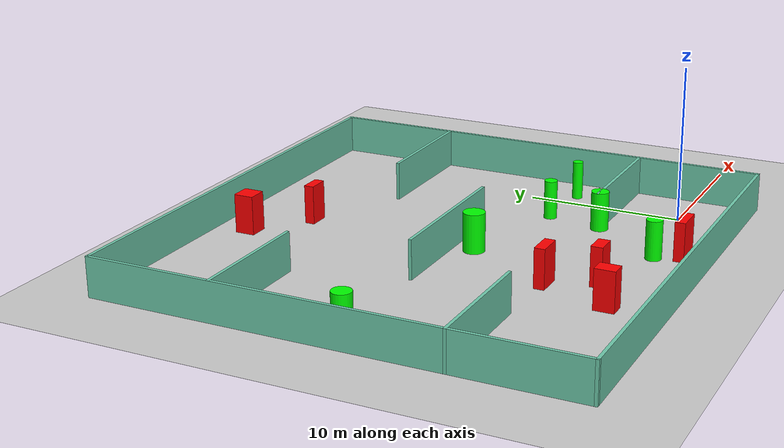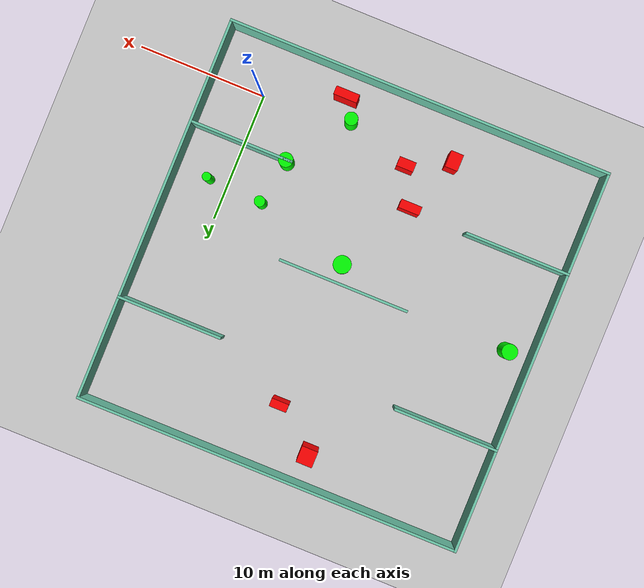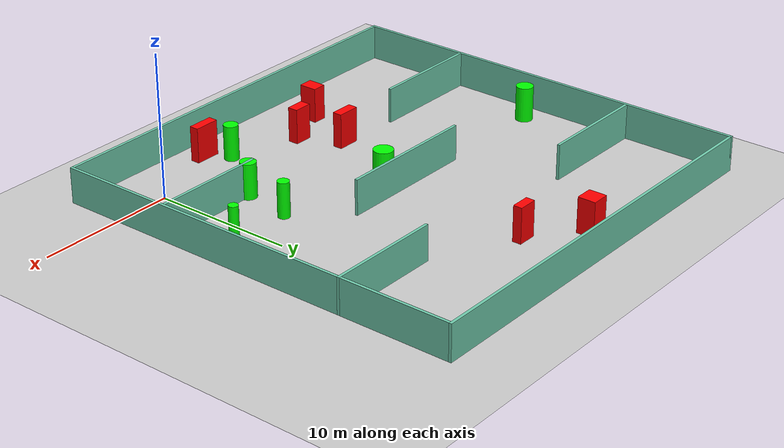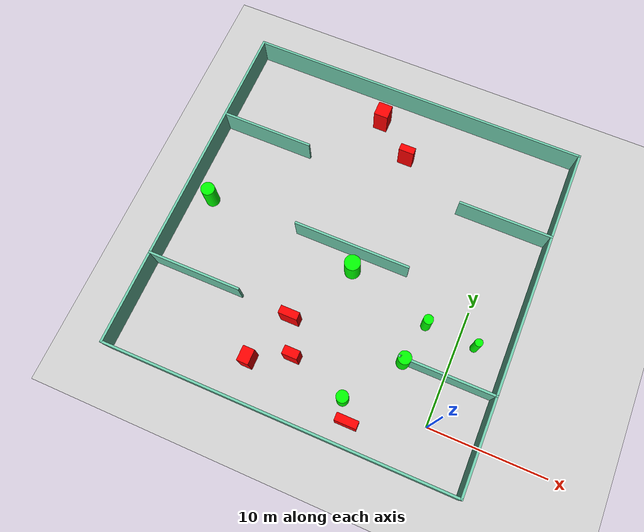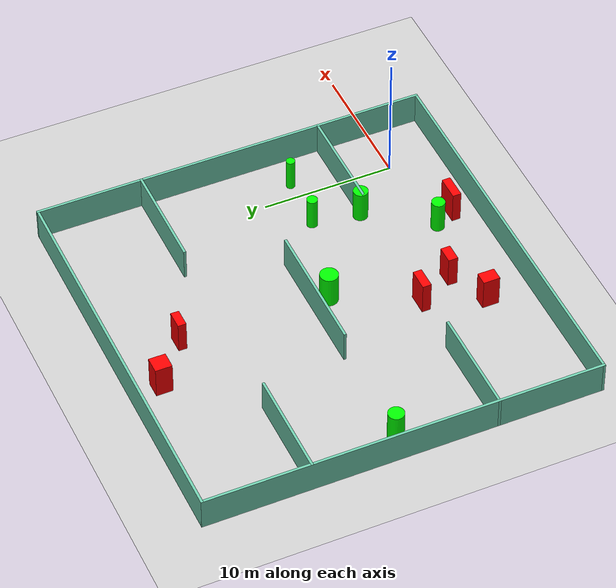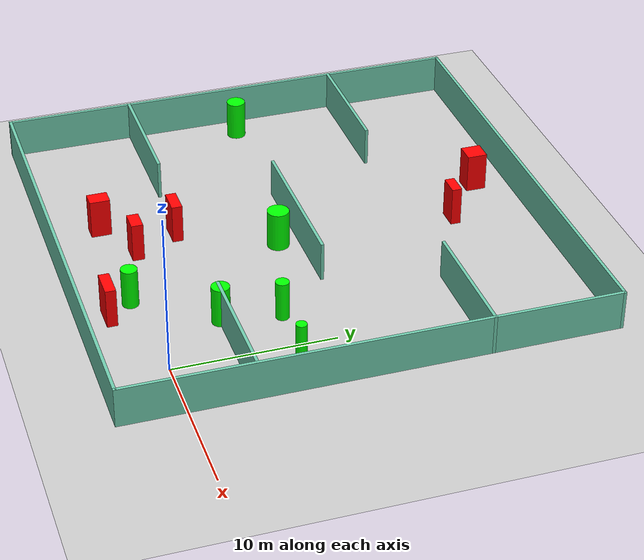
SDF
<sdf version="1.7">
 <world name="default">
  <light name="sun" type="directional">
   <pose>0 0 10 0 -0 0</pose>
   <diffuse>0.8 0.8 0.8 1</diffuse>
   <specular>0.2 0.2 0.2 1</specular>
   <attenuation>
    <range>1000</range>
    <constant>0.9</constant>
    <linear>0.01</linear>
    <quadratic>0.001</quadratic>
   </attenuation>
   <direction>-0.5 0.1 -0.9</direction>
   <spot><inner_angle>0</inner_angle><outer_angle>0</outer_angle><falloff>0</falloff></spot>
  </light>
  <model name="ground_plane">
   <static>1</static>
   <link name="link">
    <collision name="collision">
     <geometry><plane><normal>0 0 1</normal><size>100 100</size></plane></geometry>
     <surface>
      <contact><collide_bitmask>65535</collide_bitmask></contact>
      <friction><ode><mu>100</mu><mu2>50</mu2></ode></friction>
     </surface>
    </collision>
    <visual name="visual">
     <cast_shadows>0</cast_shadows>
     <geometry><plane><normal>0 0 1</normal><size>100 100</size></plane></geometry>
     <material>
      <script><uri>file://media/materials/scripts/gazebo.material</uri><name>Gazebo/Grey</name></script>
     </material>
    </visual>
   </link>
  </model>
  <gravity>0 0 -9.8</gravity>
  <magnetic_field>6e-06 2.3e-05 -4.2e-05</magnetic_field>
  <atmosphere type="adiabatic"/>
  <physics type="ode">
   <max_step_size>0.001</max_step_size>
   <real_time_factor>1</real_time_factor>
   <real_time_update_rate>1000</real_time_update_rate>
  </physics>
  <scene><ambient>0.4 0.4 0.4 1</ambient><background>0.7 0.7 0.7 1</background><shadows>1</shadows></scene>
  <spherical_coordinates>
   <surface_model>EARTH_WGS84</surface_model>
   <latitude_deg>0</latitude_deg>
   <longitude_deg>0</longitude_deg>
   <elevation>0</elevation>
   <heading_deg>0</heading_deg>
  </spherical_coordinates>
  <model name="my_base_walls">
   <link name="Wall_10">
    <collision name="Wall_10_Collision">
     <geometry><box><size>8.2 0.2 2.5</size></box></geometry>
     <pose>0 0 1.25 0 -0 0</pose>
    </collision>
    <visual name="Wall_10_Visual">
     <pose>0 0 1.25 0 -0 0</pose>
     <geometry><box><size>8.2 0.2 2.5</size></box></geometry>
     <material>
      <script><uri>file://media/materials/scripts/gazebo.material</uri><name>Gazebo/Grey</name></script>
      <ambient>0.435294 0.796078 0.67451 1</ambient>
     </material>
     <meta><layer>0</layer></meta>
    </visual>
    <pose>-11 -7 0 0 -0 0</pose>
   </link>
   <link name="Wall_12">
    <collision name="Wall_12_Collision">
     <geometry><box><size>8.2 0.2 2.5</size></box></geometry>
     <pose>0 0 1.25 0 -0 0</pose>
    </collision>
    <visual name="Wall_12_Visual">
     <pose>0 0 1.25 0 -0 0</pose>
     <geometry><box><size>8.2 0.2 2.5</size></box></geometry>
     <material>
      <script><uri>file://media/materials/scripts/gazebo.material</uri><name>Gazebo/Grey</name></script>
      <ambient>0.435294 0.796078 0.67451 1</ambient>
     </material>
     <meta><layer>0</layer></meta>
    </visual>
    <pose>-11 7 0 0 -0 0</pose>
   </link>
   <link name="Wall_14">
    <collision name="Wall_14_Collision">
     <geometry><box><size>8.2 0.2 2.5</size></box></geometry>
     <pose>0 0 1.25 0 -0 0</pose>
    </collision>
    <visual name="Wall_14_Visual">
     <pose>0 0 1.25 0 -0 0</pose>
     <geometry><box><size>8.2 0.2 2.5</size></box></geometry>
     <material>
      <script><uri>file://media/materials/scripts/gazebo.material</uri><name>Gazebo/Grey</name></script>
      <ambient>0.435294 0.796078 0.67451 1</ambient>
     </material>
     <meta><layer>0</layer></meta>
    </visual>
    <pose>11 7 0 0 -0 3.14159</pose>
   </link>
   <link name="Wall_16">
    <collision name="Wall_16_Collision">
     <geometry><box><size>10.2 0.2 2.5</size></box></geometry>
     <pose>0 0 1.25 0 -0 0</pose>
    </collision>
    <visual name="Wall_16_Visual">
     <pose>0 0 1.25 0 -0 0</pose>
     <geometry><box><size>10.2 0.2 2.5</size></box></geometry>
     <material>
      <script><uri>file://media/materials/scripts/gazebo.material</uri><name>Gazebo/Grey</name></script>
      <ambient>0.435294 0.796078 0.67451 1</ambient>
     </material>
     <meta><layer>0</layer></meta>
    </visual>
    <pose>0 0 0 0 -0 3.14159</pose>
   </link>
   <link name="Wall_2">
    <collision name="Wall_2_Collision">
     <geometry><box><size>30.2 0.2 2.5</size></box></geometry>
     <pose>0 0 1.25 0 -0 0</pose>
    </collision>
    <visual name="Wall_2_Visual">
     <pose>0 0 1.25 0 -0 0</pose>
     <geometry><box><size>30.2 0.2 2.5</size></box></geometry>
     <material>
      <script><uri>file://media/materials/scripts/gazebo.material</uri><name>Gazebo/Grey</name></script>
      <ambient>0.435294 0.796078 0.67451 1</ambient>
     </material>
     <meta><layer>0</layer></meta>
    </visual>
    <pose>0 -15 0 0 -0 3.14159</pose>
   </link>
   <link name="Wall_3">
    <collision name="Wall_3_Collision">
     <geometry><box><size>30.2 0.2 2.5</size></box></geometry>
     <pose>0 0 1.25 0 -0 0</pose>
    </collision>
    <visual name="Wall_3_Visual">
     <pose>0 0 1.25 0 -0 0</pose>
     <geometry><box><size>30.2 0.2 2.5</size></box></geometry>
     <material>
      <script><uri>file://media/materials/scripts/gazebo.material</uri><name>Gazebo/Grey</name></script>
      <ambient>0.435294 0.796078 0.67451 1</ambient>
     </material>
     <meta><layer>0</layer></meta>
    </visual>
    <pose>-15 0 0 0 -0 1.5708</pose>
   </link>
   <link name="Wall_4">
    <collision name="Wall_4_Collision">
     <geometry><box><size>30.2 0.2 2.5</size></box></geometry>
     <pose>0 0 1.25 0 -0 0</pose>
    </collision>
    <visual name="Wall_4_Visual">
     <pose>0 0 1.25 0 -0 0</pose>
     <geometry><box><size>30.2 0.2 2.5</size></box></geometry>
     <material>
      <script><uri>file://media/materials/scripts/gazebo.material</uri><name>Gazebo/Grey</name></script>
      <ambient>0.435294 0.796078 0.67451 1</ambient>
     </material>
     <meta><layer>0</layer></meta>
    </visual>
    <pose>0 15 0 0 -0 0</pose>
   </link>
   <link name="Wall_6">
    <collision name="Wall_6_Collision">
     <geometry><box><size>30.2 0.2 2.5</size></box></geometry>
     <pose>0 0 1.25 0 -0 0</pose>
    </collision>
    <visual name="Wall_6_Visual">
     <pose>0 0 1.25 0 -0 0</pose>
     <geometry><box><size>30.2 0.2 2.5</size></box></geometry>
     <material>
      <script><uri>file://media/materials/scripts/gazebo.material</uri><name>Gazebo/Grey</name></script>
      <ambient>0.435294 0.796078 0.67451 1</ambient>
     </material>
     <meta><layer>0</layer></meta>
    </visual>
    <pose>15 0 0 0 -0 1.5708</pose>
   </link>
   <link name="Wall_8">
    <collision name="Wall_8_Collision">
     <geometry><box><size>8.2 0.2 2.5</size></box></geometry>
     <pose>0 0 1.25 0 -0 0</pose>
    </collision>
    <visual name="Wall_8_Visual">
     <pose>0 0 1.25 0 -0 0</pose>
     <geometry><box><size>8.2 0.2 2.5</size></box></geometry>
     <material>
      <script><uri>file://media/materials/scripts/gazebo.material</uri><name>Gazebo/Grey</name></script>
      <ambient>0.435294 0.796078 0.67451 1</ambient>
     </material>
     <meta><layer>0</layer></meta>
    </visual>
    <pose>11 -7 0 0 -0 3.14159</pose>
   </link>
   <static>1</static>
   <pose>-11 11 0 0 -0 0</pose>
  </model>
  <model name="cylinder1">
   <static>1</static>
   <link name="link">
    <inertial>
     <mass>1</mass>
     <inertia><ixx>0.5</ixx><ixy>0</ixy><ixz>0</ixz><iyy>0.5</iyy><iyz>0</iyz><izz>1</izz></inertia>
    </inertial>
    <collision name="collision">
     <geometry><cylinder><radius>0.3352864718869668</radius><length>2.5</length></cylinder></geometry>
    </collision>
    <visual name="visual">
     <geometry><cylinder><radius>0.3352864718869668</radius><length>2.5</length></cylinder></geometry>
     <material>
      <ambient>0 1 0 1</ambient>
      <diffuse>0 1 0 1</diffuse>
      <specular>0.1 0.1 0.1 1</specular>
      <emissive>0 0 0 0</emissive>
     </material>
    </visual>
   </link>
   <pose>1.3568183717337021 7.3626003690291775 1.25 0 0 0</pose>
  </model>
  <model name="cylinder2">
   <static>1</static>
   <link name="link">
    <inertial>
     <mass>1</mass>
     <inertia><ixx>0.5</ixx><ixy>0</ixy><ixz>0</ixz><iyy>0.5</iyy><iyz>0</iyz><izz>1</izz></inertia>
    </inertial>
    <collision name="collision">
     <geometry><cylinder><radius>0.560084595584512</radius><length>2.5</length></cylinder></geometry>
    </collision>
    <visual name="visual">
     <geometry><cylinder><radius>0.560084595584512</radius><length>2.5</length></cylinder></geometry>
     <material>
      <ambient>0 1 0 1</ambient>
      <diffuse>0 1 0 1</diffuse>
      <specular>0.1 0.1 0.1 1</specular>
      <emissive>0 0 0 0</emissive>
     </material>
    </visual>
   </link>
   <pose>-3.571719795997158 4.023704177658449 1.25 0 0 0</pose>
  </model>
  <model name="cylinder3">
   <static>1</static>
   <link name="link">
    <inertial>
     <mass>1</mass>
     <inertia><ixx>0.5</ixx><ixy>0</ixy><ixz>0</ixz><iyy>0.5</iyy><iyz>0</iyz><izz>1</izz></inertia>
    </inertial>
    <collision name="collision">
     <geometry><cylinder><radius>0.5096374640823701</radius><length>2.5</length></cylinder></geometry>
    </collision>
    <visual name="visual">
     <geometry><cylinder><radius>0.5096374640823701</radius><length>2.5</length></cylinder></geometry>
     <material>
      <ambient>0 1 0 1</ambient>
      <diffuse>0 1 0 1</diffuse>
      <specular>0.1 0.1 0.1 1</specular>
      <emissive>0 0 0 0</emissive>
     </material>
    </visual>
   </link>
   <pose>-6.90169014289078 -0.5941729389734611 1.25 0 0 0</pose>
  </model>
  <model name="cylinder4">
   <static>1</static>
   <link name="link">
    <inertial>
     <mass>1</mass>
     <inertia><ixx>0.5</ixx><ixy>0</ixy><ixz>0</ixz><iyy>0.5</iyy><iyz>0</iyz><izz>1</izz></inertia>
    </inertial>
    <collision name="collision">
     <geometry><cylinder><radius>0.6887785176994631</radius><length>2.5</length></cylinder></geometry>
    </collision>
    <visual name="visual">
     <geometry><cylinder><radius>0.6887785176994631</radius><length>2.5</length></cylinder></geometry>
     <material>
      <ambient>0 1 0 1</ambient>
      <diffuse>0 1 0 1</diffuse>
      <specular>0.1 0.1 0.1 1</specular>
      <emissive>0 0 0 0</emissive>
     </material>
    </visual>
   </link>
   <pose>-10.326718327229413 9.59802264688941 1.25 0 0 0</pose>
  </model>
  <model name="cylinder5">
   <static>1</static>
   <link name="link">
    <inertial>
     <mass>1</mass>
     <inertia><ixx>0.5</ixx><ixy>0</ixy><ixz>0</ixz><iyy>0.5</iyy><iyz>0</iyz><izz>1</izz></inertia>
    </inertial>
    <collision name="collision">
     <geometry><cylinder><radius>0.6047281560781362</radius><length>2.5</length></cylinder></geometry>
    </collision>
    <visual name="visual">
     <geometry><cylinder><radius>0.6047281560781362</radius><length>2.5</length></cylinder></geometry>
     <material>
      <ambient>0 1 0 1</ambient>
      <diffuse>0 1 0 1</diffuse>
      <specular>0.1 0.1 0.1 1</specular>
      <emissive>0 0 0 0</emissive>
     </material>
    </visual>
   </link>
   <pose>-24.170218582206072 10.902291680030293 1.25 0 0 0</pose>
  </model>
  <model name="cylinder6">
   <static>1</static>
   <link name="link">
    <inertial>
     <mass>1</mass>
     <inertia><ixx>0.5</ixx><ixy>0</ixy><ixz>0</ixz><iyy>0.5</iyy><iyz>0</iyz><izz>1</izz></inertia>
    </inertial>
    <collision name="collision">
     <geometry><cylinder><radius>0.4149015632956965</radius><length>2.5</length></cylinder></geometry>
    </collision>
    <visual name="visual">
     <geometry><cylinder><radius>0.4149015632956965</radius><length>2.5</length></cylinder></geometry>
     <material>
      <ambient>0 1 0 1</ambient>
      <diffuse>0 1 0 1</diffuse>
      <specular>0.1 0.1 0.1 1</specular>
      <emissive>0 0 0 0</emissive>
     </material>
    </visual>
   </link>
   <pose>-2.9454840983365855 7.576704354315737 1.25 0 0 0</pose>
  </model>
  <model name="box1">
   <static>1</static>
   <link name="link">
    <inertial>
     <mass>1</mass>
     <inertia><ixx>0.083</ixx><ixy>0</ixy><ixz>0</ixz><iyy>0.083</iyy><iyz>0</iyz><izz>0.083</izz></inertia>
    </inertial>
    <collision name="collision">
     <geometry><box><size>1.3124480758677848 0.7370687707521588 2.5</size></box></geometry>
    </collision>
    <visual name="visual">
     <geometry><box><size>1.3124480758677848 0.7370687707521588 2.5</size></box></geometry>
     <material>
      <ambient>1 0 0 1</ambient>
      <diffuse>1 0 0 1</diffuse>
      <specular>0.1 0.1 0.1 1</specular>
      <emissive>0 0 0 0</emissive>
     </material>
    </visual>
    <sensor name="my_contact" type="contact">
     <contact><collision>box_collision</collision><topic>__default_topic__</topic></contact>
    </sensor>
   </link>
   <pose>-11.927258757670016 0.9762457654948808 1.25 0 0 0</pose>
  </model>
  <model name="box2">
   <static>1</static>
   <link name="link">
    <inertial>
     <mass>1</mass>
     <inertia><ixx>0.083</ixx><ixy>0</ixy><ixz>0</ixz><iyy>0.083</iyy><iyz>0</iyz><izz>0.083</izz></inertia>
    </inertial>
    <collision name="collision">
     <geometry><box><size>1.348486677850593 0.627078109074905 2.5</size></box></geometry>
    </collision>
    <visual name="visual">
     <geometry><box><size>1.348486677850593 0.627078109074905 2.5</size></box></geometry>
     <material>
      <ambient>1 0 0 1</ambient>
      <diffuse>1 0 0 1</diffuse>
      <specular>0.1 0.1 0.1 1</specular>
      <emissive>0 0 0 0</emissive>
     </material>
    </visual>
    <sensor name="my_contact" type="contact">
     <contact><collision>box_collision</collision><topic>__default_topic__</topic></contact>
    </sensor>
   </link>
   <pose>-9.930480512832148 20.938149965204843 1.25 0 0 0</pose>
  </model>
  <model name="box3">
   <static>1</static>
   <link name="link">
    <inertial>
     <mass>1</mass>
     <inertia><ixx>0.083</ixx><ixy>0</ixy><ixz>0</ixz><iyy>0.083</iyy><iyz>0</iyz><izz>0.083</izz></inertia>
    </inertial>
    <collision name="collision">
     <geometry><box><size>0.990185324136974 1.2743450600264914 2.5</size></box></geometry>
    </collision>
    <visual name="visual">
     <geometry><box><size>0.990185324136974 1.2743450600264914 2.5</size></box></geometry>
     <material>
      <ambient>1 0 0 1</ambient>
      <diffuse>1 0 0 1</diffuse>
      <specular>0.1 0.1 0.1 1</specular>
      <emissive>0 0 0 0</emissive>
     </material>
    </visual>
    <sensor name="my_contact" type="contact">
     <contact><collision>box_collision</collision><topic>__default_topic__</topic></contact>
    </sensor>
   </link>
   <pose>-15.095504937814933 -0.579927083376532 1.25 0 0 0</pose>
  </model>
  <model name="box4">
   <static>1</static>
   <link name="link">
    <inertial>
     <mass>1</mass>
     <inertia><ixx>0.083</ixx><ixy>0</ixy><ixz>0</ixz><iyy>0.083</iyy><iyz>0</iyz><izz>0.083</izz></inertia>
    </inertial>
    <collision name="collision">
     <geometry><box><size>1.8308272502236187 0.6532376756337598 2.5</size></box></geometry>
    </collision>
    <visual name="visual">
     <geometry><box><size>1.8308272502236187 0.6532376756337598 2.5</size></box></geometry>
     <material>
      <ambient>1 0 0 1</ambient>
      <diffuse>1 0 0 1</diffuse>
      <specular>0.1 0.1 0.1 1</specular>
      <emissive>0 0 0 0</emissive>
     </material>
    </visual>
    <sensor name="my_contact" type="contact">
     <contact><collision>box_collision</collision><topic>__default_topic__</topic></contact>
    </sensor>
   </link>
   <pose>-5.908887785683204 -2.1221735034770597 1.25 0 0 0</pose>
  </model>
  <model name="box5">
   <static>1</static>
   <link name="link">
    <inertial>
     <mass>1</mass>
     <inertia><ixx>0.083</ixx><ixy>0</ixy><ixz>0</ixz><iyy>0.083</iyy><iyz>0</iyz><izz>0.083</izz></inertia>
    </inertial>
    <collision name="collision">
     <geometry><box><size>1.632947101090401 0.6671967656669036 2.5</size></box></geometry>
    </collision>
    <visual name="visual">
     <geometry><box><size>1.632947101090401 0.6671967656669036 2.5</size></box></geometry>
     <material>
      <ambient>1 0 0 1</ambient>
      <diffuse>1 0 0 1</diffuse>
      <specular>0.1 0.1 0.1 1</specular>
      <emissive>0 0 0 0</emissive>
     </material>
    </visual>
    <sensor name="my_contact" type="contact">
     <contact><collision>box_collision</collision><topic>__default_topic__</topic></contact>
    </sensor>
   </link>
   <pose>-13.38148290776179 3.797872045120026 1.25 0 0 0</pose>
  </model>
  <model name="box6">
   <static>1</static>
   <link name="link">
    <inertial>
     <mass>1</mass>
     <inertia><ixx>0.083</ixx><ixy>0</ixy><ixz>0</ixz><iyy>0.083</iyy><iyz>0</iyz><izz>0.083</izz></inertia>
    </inertial>
    <collision name="collision">
     <geometry><box><size>1.25709478945885 1.268607307233707 2.5</size></box></geometry>
    </collision>
    <visual name="visual">
     <geometry><box><size>1.25709478945885 1.268607307233707 2.5</size></box></geometry>
     <material>
      <ambient>1 0 0 1</ambient>
      <diffuse>1 0 0 1</diffuse>
      <specular>0.1 0.1 0.1 1</specular>
      <emissive>0 0 0 0</emissive>
     </material>
    </visual>
    <sensor name="my_contact" type="contact">
     <contact><collision>box_collision</collision><topic>__default_topic__</topic></contact>
    </sensor>
   </link>
   <pose>-13.27236041381373 23.67645693312915 1.25 0 0 0</pose>
  </model>
 </world>
</sdf>
